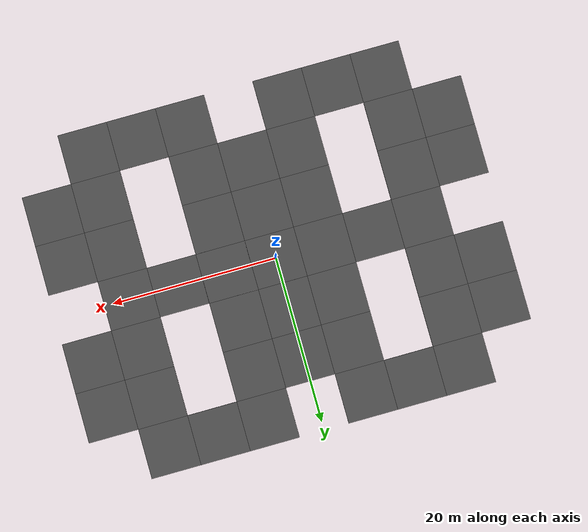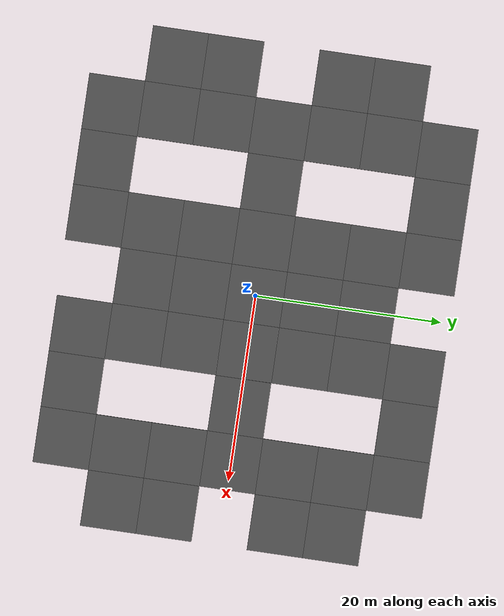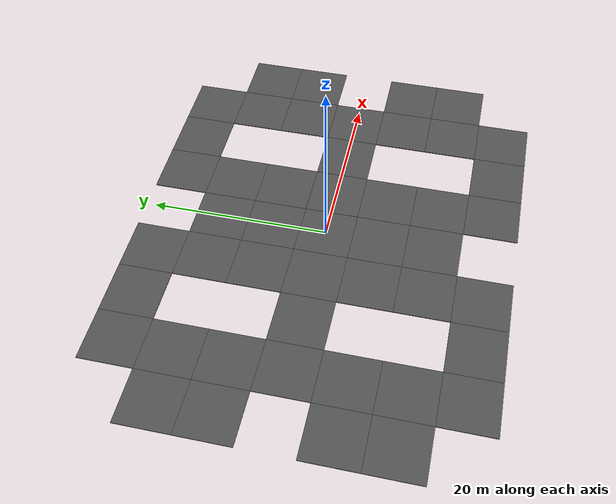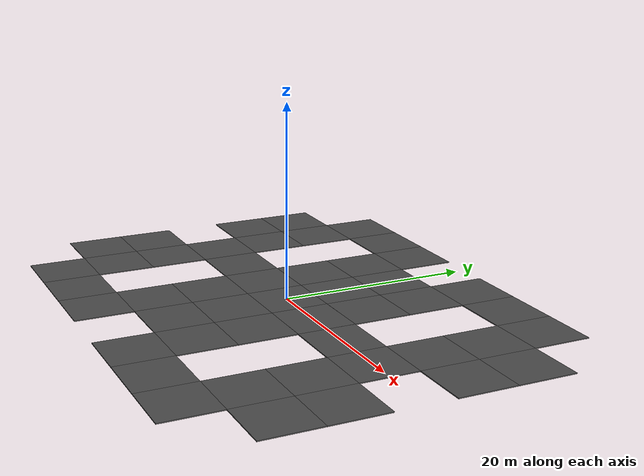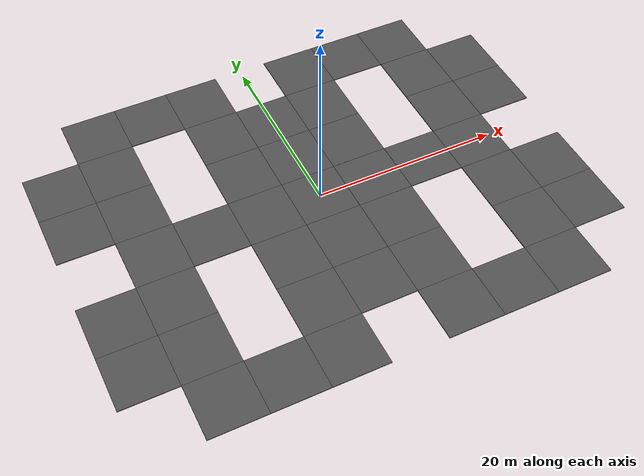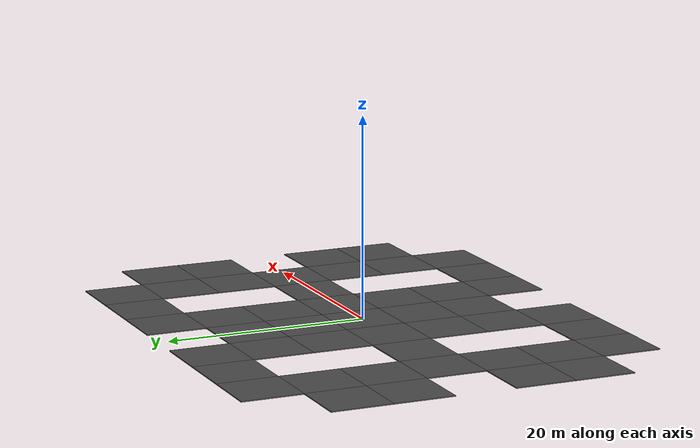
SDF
<sdf version="1.4">
 <world name="myworld">
  <scene><shadows>0</shadows></scene>
  <include><uri>model://sun</uri></include>
  <include><uri>model://road_4</uri><name>r1</name></include>
  <include><uri>model://road_2</uri><name>r2</name><pose>6 0 0 0 0 3.1459</pose></include>
  <include><uri>model://road_1</uri><name>r3</name><pose>12 0 0 0 0 0</pose></include>
  <include><uri>model://road_2</uri><name>r4</name><pose>18 0 0 0 0 0</pose></include>
  <include><uri>model://road_2</uri><name>r6</name><pose>6 18 0 0 0 3.14159</pose></include>
  <include><uri>model://road_1</uri><name>r7</name><pose>12 18 0 0 0 0</pose></include>
  <include><uri>model://road_2</uri><name>r8</name><pose>18 18 0 0 0 0</pose></include>
  <include><uri>model://road_2</uri><name>r10</name><pose>6 -18 0 0 0 3.14159</pose></include>
  <include><uri>model://road_1</uri><name>r11</name><pose>12 -18 0 0 0 0</pose></include>
  <include><uri>model://road_2</uri><name>r12</name><pose>18 -18 0 0 0 0</pose></include>
  <include><uri>model://road_2</uri><name>r14</name><pose>24 6 0 0 0 -1.5708</pose></include>
  <include><uri>model://road_2</uri><name>r15</name><pose>24 -6 0 0 0 1.5708</pose></include>
  <include><uri>model://road_2</uri><name>r16</name><pose>-6 0 0 0 0 0</pose></include>
  <include><uri>model://road_1</uri><name>r17</name><pose>-12 0 0 0 0 0</pose></include>
  <include><uri>model://road_2</uri><name>r18</name><pose>-18 0 0 0 0 3.14159</pose></include>
  <include><uri>model://road_2</uri><name>r20</name><pose>-6 18 0 0 0 0</pose></include>
  <include><uri>model://road_1</uri><name>r21</name><pose>-12 18 0 0 0 0</pose></include>
  <include><uri>model://road_2</uri><name>r22</name><pose>-18 18 0 0 0 3.14159</pose></include>
  <include><uri>model://road_2</uri><name>r24</name><pose>-6 -18 0 0 0 0</pose></include>
  <include><uri>model://road_1</uri><name>r25</name><pose>-12 -18 0 0 0 0</pose></include>
  <include><uri>model://road_2</uri><name>r26</name><pose>-18 -18 0 0 0 3.14159</pose></include>
  <include><uri>model://road_2</uri><name>r28</name><pose>-24 6 0 0 0 -1.5708</pose></include>
  <include><uri>model://road_2</uri><name>r29</name><pose>-24 -6 0 0 0 1.5708</pose></include>
  <include><uri>model://road_2</uri><name>r30</name><pose>0 -6 0 0 0 1.5708</pose></include>
  <include><uri>model://road_2</uri><name>r31</name><pose>0 6 0 0 0 -1.5708</pose></include>
  <include><uri>model://road_2</uri><name>r34</name><pose>24 12 0 0 0 1.5708</pose></include>
  <include><uri>model://road_2</uri><name>r35</name><pose>0 12 0 0 0 1.5708</pose></include>
  <include><uri>model://road_2</uri><name>r36</name><pose>-24 12 0 0 0 1.5708</pose></include>
  <include><uri>model://road_2</uri><name>r37</name><pose>24 -12 0 0 0 -1.5708</pose></include>
  <include><uri>model://road_2</uri><name>r38</name><pose>0 -12 0 0 0 -1.5708</pose></include>
  <include><uri>model://road_2</uri><name>r39</name><pose>-24 -12 0 0 0 -1.5708</pose></include>
  <include><uri>model://road_4</uri><name>r40</name><pose>6 -6 0 0 0 0</pose></include>
  <include><uri>model://road_4</uri><name>r41</name><pose>18 -6 0 0 0 0</pose></include>
  <include><uri>model://road_4</uri><name>r42</name><pose>6 -12 0 0 0 0</pose></include>
  <include><uri>model://road_4</uri><name>r43</name><pose>18 -12 0 0 0 0</pose></include>
  <include><uri>model://road_4</uri><name>r44</name><pose>6 6 0 0 0 0</pose></include>
  <include><uri>model://road_4</uri><name>r45</name><pose>18 6 0 0 0 0</pose></include>
  <include><uri>model://road_4</uri><name>r46</name><pose>6 12 0 0 0 0</pose></include>
  <include><uri>model://road_4</uri><name>r47</name><pose>18 12 0 0 0 0</pose></include>
  <include><uri>model://road_4</uri><name>r48</name><pose>-6 -6 0 0 0 0</pose></include>
  <include><uri>model://road_4</uri><name>r49</name><pose>-18 -6 0 0 0 0</pose></include>
  <include><uri>model://road_4</uri><name>r50</name><pose>-6 -12 0 0 0 0</pose></include>
  <include><uri>model://road_4</uri><name>r51</name><pose>-18 -12 0 0 0 0</pose></include>
  <include><uri>model://road_4</uri><name>r52</name><pose>-6 6 0 0 0 0</pose></include>
  <include><uri>model://road_4</uri><name>r53</name><pose>-18 6 0 0 0 0</pose></include>
  <include><uri>model://road_4</uri><name>r54</name><pose>-6 12 0 0 0 0</pose></include>
  <include><uri>model://road_4</uri><name>r55</name><pose>-18 12 0 0 0 0</pose></include>
 </world>
</sdf>

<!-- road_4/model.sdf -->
<sdf version="1.5">
  <model name="road_4">
    <static>true</static>
    <link name="link">
      <collision name="collision">
        <geometry>
          <box>
            <size>6 6 .1</size>
          </box>
        </geometry>
      </collision>
      <visual name="visual">
        <cast_shadows>false</cast_shadows>
        <geometry>
          <box>
            <size>6 6 .1</size>
          </box>
        </geometry>
        <material>
          <script>
            <uri>model://road_4/materials/scripts</uri>
            <uri>model://road_4/materials/textures</uri>
            <name>vrc/road_4</name>
          </script>
        </material>
      </visual>
    </link>
  </model>
</sdf>

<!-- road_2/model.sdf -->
<sdf version="1.5">
  <model name="road_2">
    <static>true</static>
    <link name="link">
      <collision name="collision">
        <geometry>
          <box>
            <size>6 6 .1</size>
          </box>
        </geometry>
      </collision>
      <visual name="visual">
        <cast_shadows>false</cast_shadows>
        <geometry>
          <box>
            <size>6 6 .1</size>
          </box>
        </geometry>
        <material>
          <script>
            <uri>model://road_2/materials/scripts</uri>
            <uri>model://road_2/materials/textures</uri>
            <name>vrc/road_2</name>
          </script>
        </material>
      </visual>
    </link>
  </model>
</sdf>

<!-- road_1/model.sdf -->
<sdf version="1.5">
  <model name="road_1">
    <static>true</static>
    <link name="link">
      <collision name="collision">
        <geometry>
          <box>
            <size>6 6 .1</size>
          </box>
        </geometry>
      </collision>
      <visual name="visual">
        <cast_shadows>false</cast_shadows>
        <geometry>
          <box>
            <size>6 6 .1</size>
          </box>
        </geometry>
        <material>
          <script>
            <uri>model://road_1/materials/scripts</uri>
            <uri>model://road_1/materials/textures</uri>
            <name>vrc/road_1</name>
          </script>
        </material>
      </visual>
    </link>
  </model>
</sdf>
